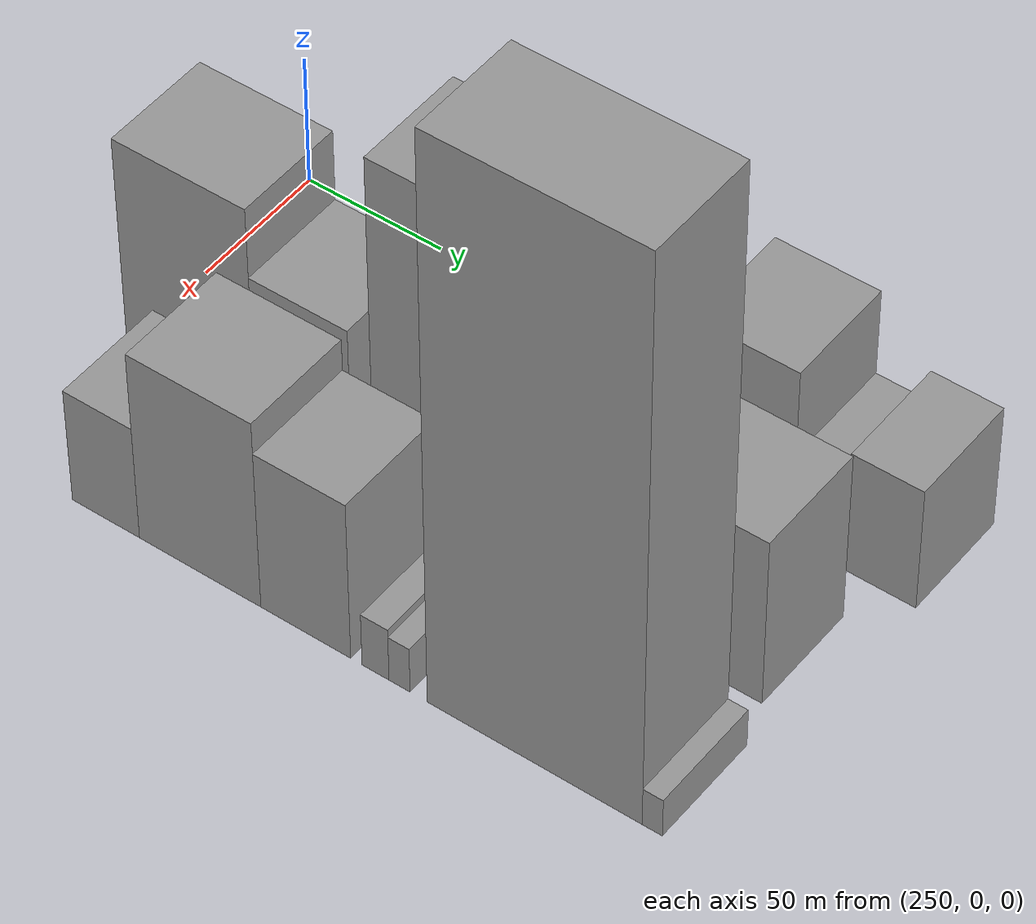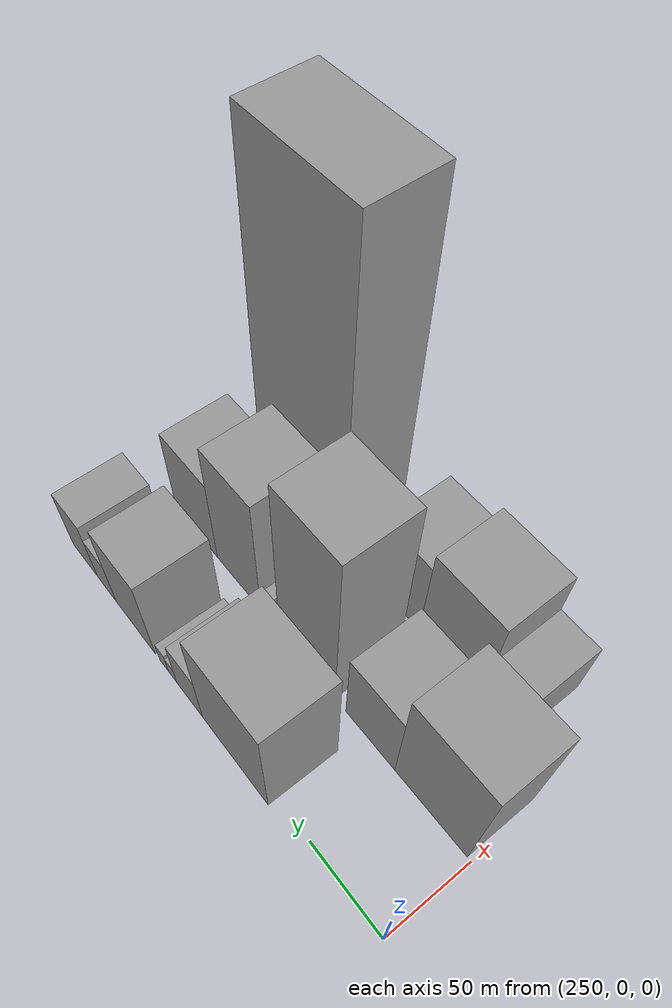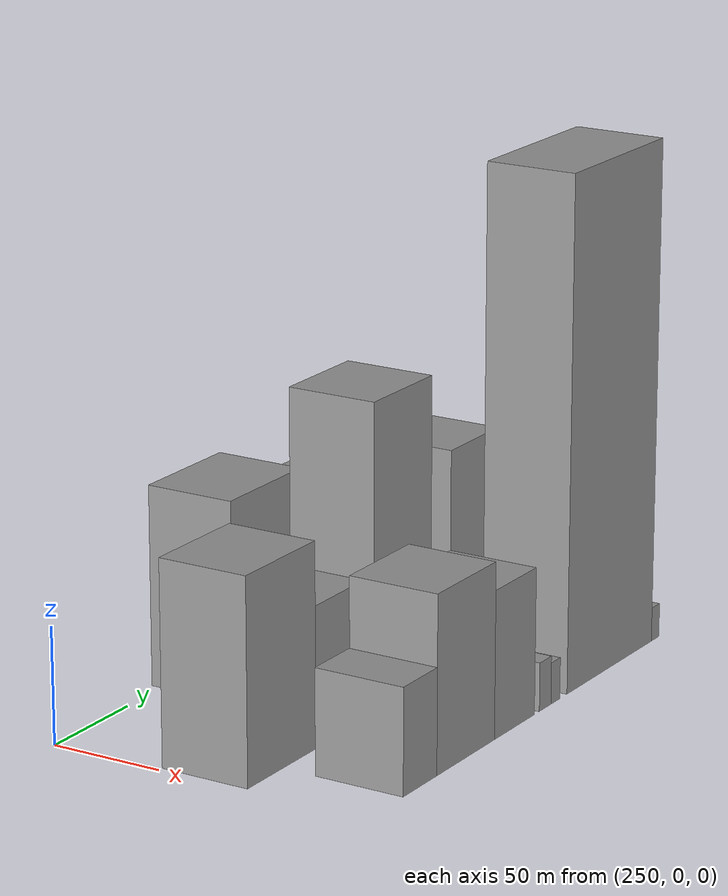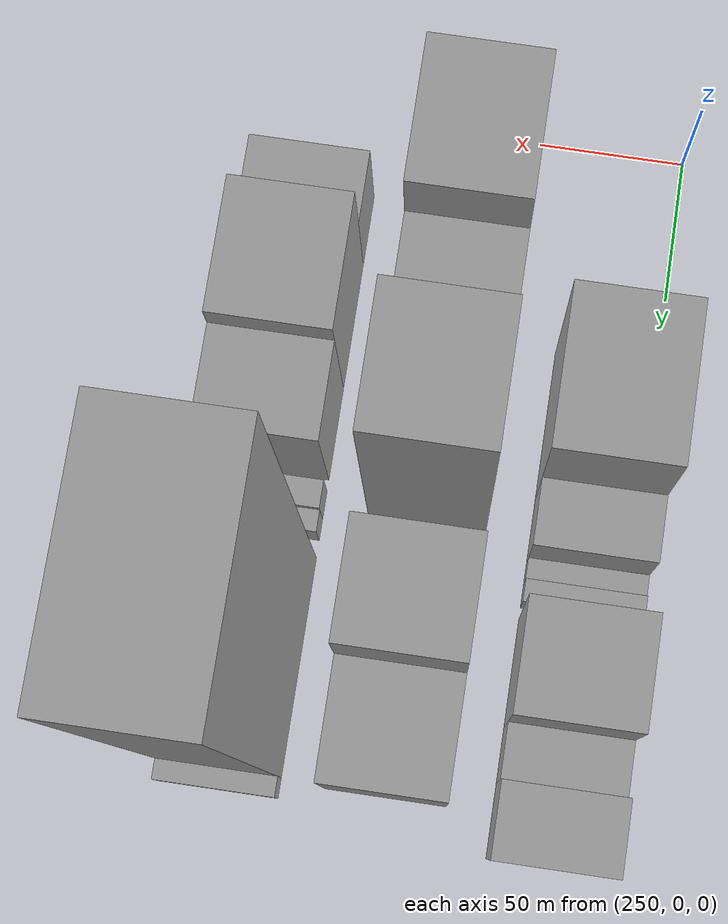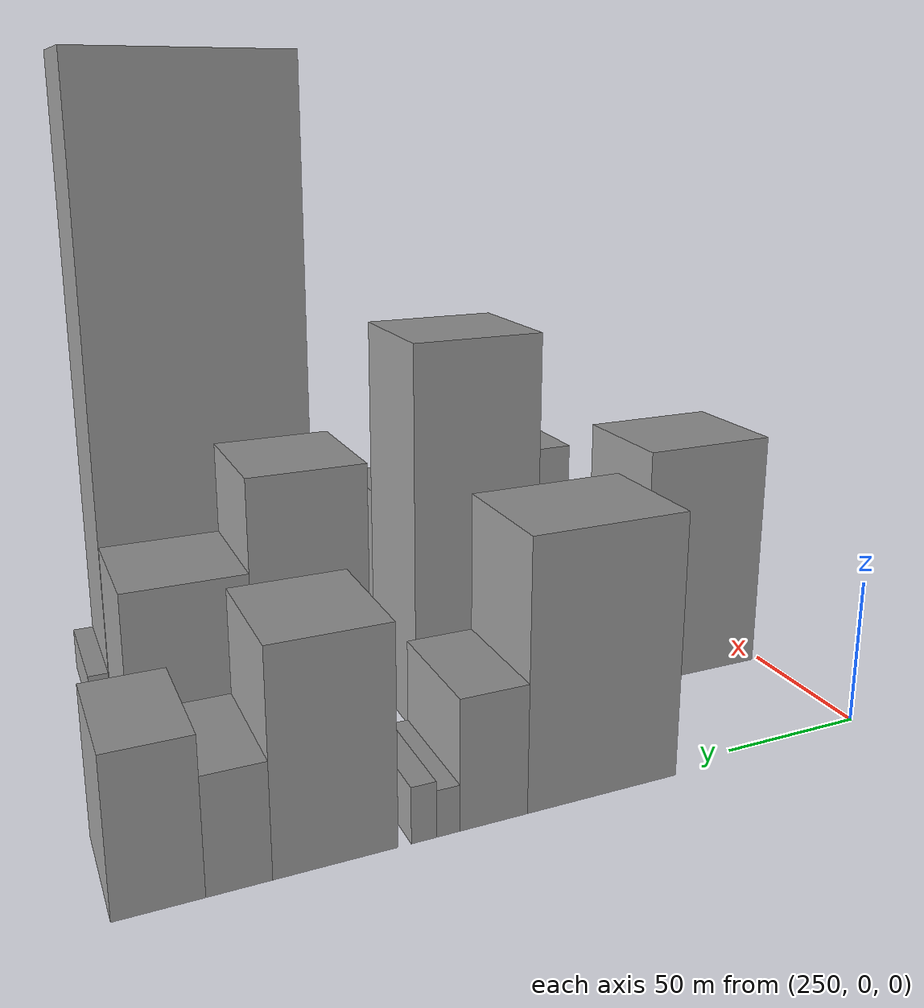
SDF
<sdf version="1.6">
 <world name="default">
  <model name="building_184">
   <static>1</static>
   <pose>265.0000 99.9097 0 0.000000 0.000000 0.000000</pose>
   <link name="link">
    <pose>0 0 43.50 0 0 0</pose>
    <collision name="collision"><geometry><box><size>40.0000 51.7991 87.0000</size></box></geometry></collision>
    <visual name="visual">
     <cast_shadows>0</cast_shadows>
     <geometry><box><size>40.0000 51.7991 87.0000</size></box></geometry>
     <material>
      <script>
       <uri>model://grey_wall/materials/scripts</uri>
       <uri>model://grey_wall/materials/textures</uri>
       <name>vrc/grey_wall</name>
      </script>
     </material>
    </visual>
   </link>
  </model>
  <model name="building_185">
   <static>1</static>
   <pose>265.0000 136.7262 0 0.000000 0.000000 0.000000</pose>
   <link name="link">
    <pose>0 0 21.00 0 0 0</pose>
    <collision name="collision"><geometry><box><size>40.0000 21.8338 42.0000</size></box></geometry></collision>
    <visual name="visual">
     <cast_shadows>0</cast_shadows>
     <geometry><box><size>40.0000 21.8338 42.0000</size></box></geometry>
     <material>
      <script>
       <uri>model://grey_wall/materials/scripts</uri>
       <uri>model://grey_wall/materials/textures</uri>
       <name>vrc/grey_wall</name>
      </script>
     </material>
    </visual>
   </link>
  </model>
  <model name="building_186">
   <static>1</static>
   <pose>265.0000 151.3010 0 0.000000 0.000000 0.000000</pose>
   <link name="link">
    <pose>0 0 7.50 0 0 0</pose>
    <collision name="collision"><geometry><box><size>40.0000 7.3160 15.0000</size></box></geometry></collision>
    <visual name="visual">
     <cast_shadows>0</cast_shadows>
     <geometry><box><size>40.0000 7.3160 15.0000</size></box></geometry>
     <material>
      <script>
       <uri>model://grey_wall/materials/scripts</uri>
       <uri>model://grey_wall/materials/textures</uri>
       <name>vrc/grey_wall</name>
      </script>
     </material>
    </visual>
   </link>
  </model>
  <model name="building_187">
   <static>1</static>
   <pose>265.0000 158.8041 0 0.000000 0.000000 0.000000</pose>
   <link name="link">
    <pose>0 0 9.00 0 0 0</pose>
    <collision name="collision"><geometry><box><size>40.0000 7.6901 18.0000</size></box></geometry></collision>
    <visual name="visual">
     <cast_shadows>0</cast_shadows>
     <geometry><box><size>40.0000 7.6901 18.0000</size></box></geometry>
     <material>
      <script>
       <uri>model://grey_wall/materials/scripts</uri>
       <uri>model://grey_wall/materials/textures</uri>
       <name>vrc/grey_wall</name>
      </script>
     </material>
    </visual>
   </link>
  </model>
  <model name="building_188">
   <static>1</static>
   <pose>265.0000 184.7537 0 0.000000 0.000000 0.000000</pose>
   <link name="link">
    <pose>0 0 34.50 0 0 0</pose>
    <collision name="collision"><geometry><box><size>40.0000 36.2090 69.0000</size></box></geometry></collision>
    <visual name="visual">
     <cast_shadows>0</cast_shadows>
     <geometry><box><size>40.0000 36.2090 69.0000</size></box></geometry>
     <material>
      <script>
       <uri>model://grey_wall/materials/scripts</uri>
       <uri>model://grey_wall/materials/textures</uri>
       <name>vrc/grey_wall</name>
      </script>
     </material>
    </visual>
   </link>
  </model>
  <model name="building_189">
   <static>1</static>
   <pose>265.0000 211.9181 0 0.000000 0.000000 0.000000</pose>
   <link name="link">
    <pose>0 0 18.00 0 0 0</pose>
    <collision name="collision"><geometry><box><size>40.0000 18.1198 36.0000</size></box></geometry></collision>
    <visual name="visual">
     <cast_shadows>0</cast_shadows>
     <geometry><box><size>40.0000 18.1198 36.0000</size></box></geometry>
     <material>
      <script>
       <uri>model://grey_wall/materials/scripts</uri>
       <uri>model://grey_wall/materials/textures</uri>
       <name>vrc/grey_wall</name>
      </script>
     </material>
    </visual>
   </link>
  </model>
  <model name="building_190">
   <static>1</static>
   <pose>265.0000 233.2220 0 0.000000 0.000000 0.000000</pose>
   <link name="link">
    <pose>0 0 24.00 0 0 0</pose>
    <collision name="collision"><geometry><box><size>40.0000 24.4879 48.0000</size></box></geometry></collision>
    <visual name="visual">
     <cast_shadows>0</cast_shadows>
     <geometry><box><size>40.0000 24.4879 48.0000</size></box></geometry>
     <material>
      <script>
       <uri>model://grey_wall/materials/scripts</uri>
       <uri>model://grey_wall/materials/textures</uri>
       <name>vrc/grey_wall</name>
      </script>
     </material>
    </visual>
   </link>
  </model>
  <model name="building_238">
   <static>1</static>
   <pose>320.0000 26.7732 0 0.000000 0.000000 0.000000</pose>
   <link name="link">
    <pose>0 0 43.50 0 0 0</pose>
    <collision name="collision"><geometry><box><size>40.0000 48.5539 87.0000</size></box></geometry></collision>
    <visual name="visual">
     <cast_shadows>0</cast_shadows>
     <geometry><box><size>40.0000 48.5539 87.0000</size></box></geometry>
     <material>
      <script>
       <uri>model://grey_wall/materials/scripts</uri>
       <uri>model://grey_wall/materials/textures</uri>
       <name>vrc/grey_wall</name>
      </script>
     </material>
    </visual>
   </link>
  </model>
  <model name="building_239">
   <static>1</static>
   <pose>320.0000 68.8217 0 0.000000 0.000000 0.000000</pose>
   <link name="link">
    <pose>0 0 30.00 0 0 0</pose>
    <collision name="collision"><geometry><box><size>40.0000 35.5432 60.0000</size></box></geometry></collision>
    <visual name="visual">
     <cast_shadows>0</cast_shadows>
     <geometry><box><size>40.0000 35.5432 60.0000</size></box></geometry>
     <material>
      <script>
       <uri>model://grey_wall/materials/scripts</uri>
       <uri>model://grey_wall/materials/textures</uri>
       <name>vrc/grey_wall</name>
      </script>
     </material>
    </visual>
   </link>
  </model>
  <model name="building_240">
   <static>1</static>
   <pose>320.0000 116.7185 0 0.000000 0.000000 0.000000</pose>
   <link name="link">
    <pose>0 0 66.00 0 0 0</pose>
    <collision name="collision"><geometry><box><size>40.0000 44.2503 132.0000</size></box></geometry></collision>
    <visual name="visual">
     <cast_shadows>0</cast_shadows>
     <geometry><box><size>40.0000 44.2503 132.0000</size></box></geometry>
     <material>
      <script>
       <uri>model://grey_wall/materials/scripts</uri>
       <uri>model://grey_wall/materials/textures</uri>
       <name>vrc/grey_wall</name>
      </script>
     </material>
    </visual>
   </link>
  </model>
  <model name="building_241">
   <static>1</static>
   <pose>320.0000 150.6025 0 0.000000 0.000000 0.000000</pose>
   <link name="link">
    <pose>0 0 9.00 0 0 0</pose>
    <collision name="collision"><geometry><box><size>40.0000 7.5178 18.0000</size></box></geometry></collision>
    <visual name="visual">
     <cast_shadows>0</cast_shadows>
     <geometry><box><size>40.0000 7.5178 18.0000</size></box></geometry>
     <material>
      <script>
       <uri>model://grey_wall/materials/scripts</uri>
       <uri>model://grey_wall/materials/textures</uri>
       <name>vrc/grey_wall</name>
      </script>
     </material>
    </visual>
   </link>
  </model>
  <model name="building_242">
   <static>1</static>
   <pose>320.0000 173.4065 0 0.000000 0.000000 0.000000</pose>
   <link name="link">
    <pose>0 0 48.00 0 0 0</pose>
    <collision name="collision"><geometry><box><size>40.0000 38.0901 96.0000</size></box></geometry></collision>
    <visual name="visual">
     <cast_shadows>0</cast_shadows>
     <geometry><box><size>40.0000 38.0901 96.0000</size></box></geometry>
     <material>
      <script>
       <uri>model://grey_wall/materials/scripts</uri>
       <uri>model://grey_wall/materials/textures</uri>
       <name>vrc/grey_wall</name>
      </script>
     </material>
    </visual>
   </link>
  </model>
  <model name="building_243">
   <static>1</static>
   <pose>320.0000 211.6573 0 0.000000 0.000000 0.000000</pose>
   <link name="link">
    <pose>0 0 33.00 0 0 0</pose>
    <collision name="collision"><geometry><box><size>40.0000 38.4116 66.0000</size></box></geometry></collision>
    <visual name="visual">
     <cast_shadows>0</cast_shadows>
     <geometry><box><size>40.0000 38.4116 66.0000</size></box></geometry>
     <material>
      <script>
       <uri>model://grey_wall/materials/scripts</uri>
       <uri>model://grey_wall/materials/textures</uri>
       <name>vrc/grey_wall</name>
      </script>
     </material>
    </visual>
   </link>
  </model>
  <model name="building_291">
   <static>1</static>
   <pose>375.0000 39.8555 0 0.000000 0.000000 0.000000</pose>
   <link name="link">
    <pose>0 0 22.50 0 0 0</pose>
    <collision name="collision"><geometry><box><size>40.0000 24.9865 45.0000</size></box></geometry></collision>
    <visual name="visual">
     <cast_shadows>0</cast_shadows>
     <geometry><box><size>40.0000 24.9865 45.0000</size></box></geometry>
     <material>
      <script>
       <uri>model://grey_wall/materials/scripts</uri>
       <uri>model://grey_wall/materials/textures</uri>
       <name>vrc/grey_wall</name>
      </script>
     </material>
    </visual>
   </link>
  </model>
  <model name="building_292">
   <static>1</static>
   <pose>375.0000 74.5426 0 0.000000 0.000000 0.000000</pose>
   <link name="link">
    <pose>0 0 37.50 0 0 0</pose>
    <collision name="collision"><geometry><box><size>40.0000 44.3877 75.0000</size></box></geometry></collision>
    <visual name="visual">
     <cast_shadows>0</cast_shadows>
     <geometry><box><size>40.0000 44.3877 75.0000</size></box></geometry>
     <material>
      <script>
       <uri>model://grey_wall/materials/scripts</uri>
       <uri>model://grey_wall/materials/textures</uri>
       <name>vrc/grey_wall</name>
      </script>
     </material>
    </visual>
   </link>
  </model>
  <model name="building_293">
   <static>1</static>
   <pose>375.0000 112.8234 0 0.000000 0.000000 0.000000</pose>
   <link name="link">
    <pose>0 0 31.50 0 0 0</pose>
    <collision name="collision"><geometry><box><size>40.0000 32.1739 63.0000</size></box></geometry></collision>
    <visual name="visual">
     <cast_shadows>0</cast_shadows>
     <geometry><box><size>40.0000 32.1739 63.0000</size></box></geometry>
     <material>
      <script>
       <uri>model://grey_wall/materials/scripts</uri>
       <uri>model://grey_wall/materials/textures</uri>
       <name>vrc/grey_wall</name>
      </script>
     </material>
    </visual>
   </link>
  </model>
  <model name="building_294">
   <static>1</static>
   <pose>375.0000 137.6715 0 0.000000 0.000000 0.000000</pose>
   <link name="link">
    <pose>0 0 10.50 0 0 0</pose>
    <collision name="collision"><geometry><box><size>40.0000 9.5223 21.0000</size></box></geometry></collision>
    <visual name="visual">
     <cast_shadows>0</cast_shadows>
     <geometry><box><size>40.0000 9.5223 21.0000</size></box></geometry>
     <material>
      <script>
       <uri>model://grey_wall/materials/scripts</uri>
       <uri>model://grey_wall/materials/textures</uri>
       <name>vrc/grey_wall</name>
      </script>
     </material>
    </visual>
   </link>
  </model>
  <model name="building_295">
   <static>1</static>
   <pose>375.0000 146.1334 0 0.000000 0.000000 0.000000</pose>
   <link name="link">
    <pose>0 0 9.00 0 0 0</pose>
    <collision name="collision"><geometry><box><size>40.0000 7.4015 18.0000</size></box></geometry></collision>
    <visual name="visual">
     <cast_shadows>0</cast_shadows>
     <geometry><box><size>40.0000 7.4015 18.0000</size></box></geometry>
     <material>
      <script>
       <uri>model://grey_wall/materials/scripts</uri>
       <uri>model://grey_wall/materials/textures</uri>
       <name>vrc/grey_wall</name>
      </script>
     </material>
    </visual>
   </link>
  </model>
  <model name="building_296">
   <static>1</static>
   <pose>375.0000 192.6347 0 0.000000 0.000000 0.000000</pose>
   <link name="link">
    <pose>0 0 109.50 0 0 0</pose>
    <collision name="collision"><geometry><box><size>40.0000 73.6011 219.0000</size></box></geometry></collision>
    <visual name="visual">
     <cast_shadows>0</cast_shadows>
     <geometry><box><size>40.0000 73.6011 219.0000</size></box></geometry>
     <material>
      <script>
       <uri>model://grey_wall/materials/scripts</uri>
       <uri>model://grey_wall/materials/textures</uri>
       <name>vrc/grey_wall</name>
      </script>
     </material>
    </visual>
   </link>
  </model>
  <model name="building_297">
   <static>1</static>
   <pose>375.0000 232.8390 0 0.000000 0.000000 0.000000</pose>
   <link name="link">
    <pose>0 0 7.50 0 0 0</pose>
    <collision name="collision"><geometry><box><size>40.0000 6.8075 15.0000</size></box></geometry></collision>
    <visual name="visual">
     <cast_shadows>0</cast_shadows>
     <geometry><box><size>40.0000 6.8075 15.0000</size></box></geometry>
     <material>
      <script>
       <uri>model://grey_wall/materials/scripts</uri>
       <uri>model://grey_wall/materials/textures</uri>
       <name>vrc/grey_wall</name>
      </script>
     </material>
    </visual>
   </link>
  </model>
 </world>
</sdf>
